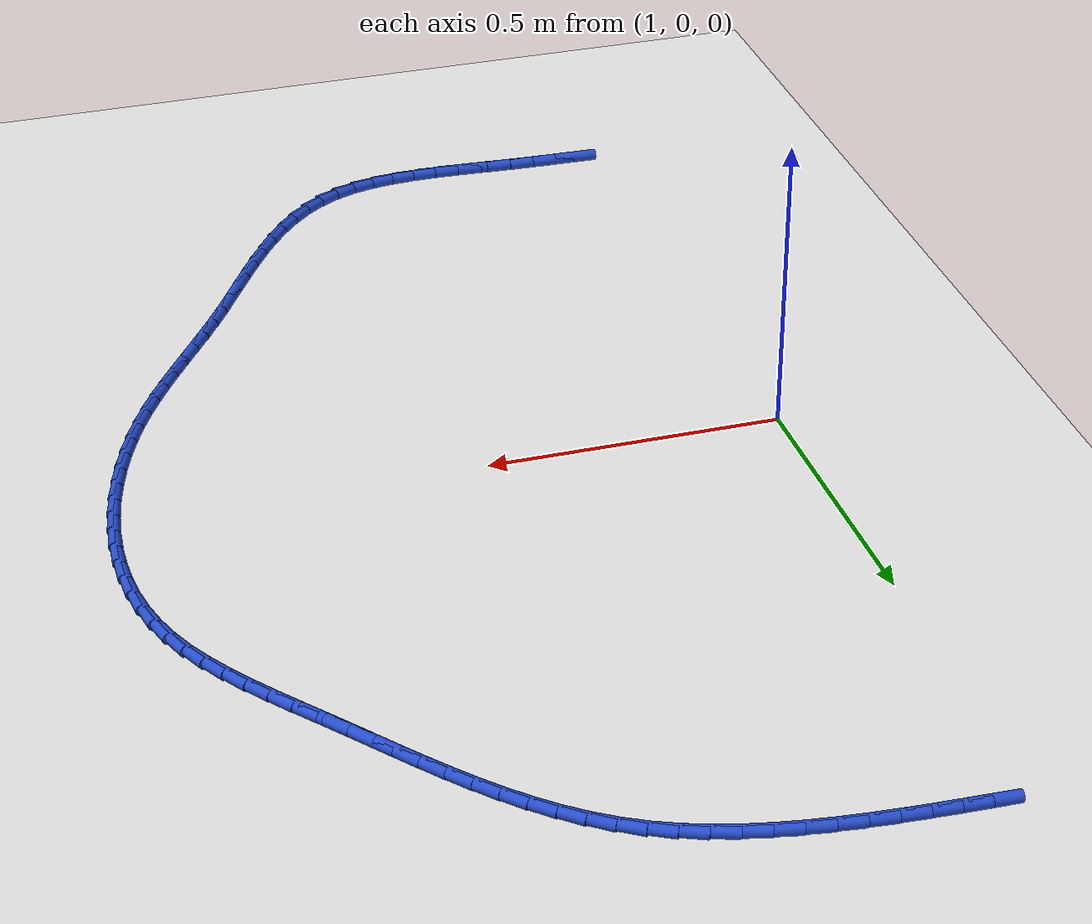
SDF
<sdf version="1.6">
 <world name="default">
  <model name="ground_plane">
   <static>1</static>
   <link name="link">
    <collision name="collision">
     <geometry><plane><normal>0 0 1</normal><size>100 100</size></plane></geometry>
     <surface><friction><ode><mu>100</mu><mu2>50</mu2></ode></friction></surface>
    </collision>
    <visual name="visual">
     <cast_shadows>0</cast_shadows>
     <geometry><plane><normal>0 0 1</normal><size>100 100</size></plane></geometry>
     <material>
      <script><uri>file://media/materials/scripts/gazebo.material</uri><name>Gazebo/WhiteGlow</name></script>
     </material>
    </visual>
   </link>
  </model>
  <model name="line">
   <link name="link_38">
    <pose>1.071652119519367 1.0308378368710045 0.01 0 1.57 -0.036284288018105695</pose>
    <collision name="collision">
     <geometry><cylinder><radius>0.01</radius><length>0.08</length></cylinder></geometry>
    </collision>
    <visual name="visual">
     <material>
      <script><name>Gazebo/Blue</name><uri>file://media/materials/scripts/gazebo.material</uri></script>
     </material>
     <geometry><cylinder><radius>0.01</radius><length>0.08</length></cylinder></geometry>
    </visual>
   </link>
   <link name="link_39">
    <pose>1.1160883028211177 1.0292247936517411 0.01 0 1.57 -0.04643816507529963</pose>
    <collision name="collision">
     <geometry><cylinder><radius>0.01</radius><length>0.08</length></cylinder></geometry>
    </collision>
    <visual name="visual">
     <material>
      <script><name>Gazebo/Blue</name><uri>file://media/materials/scripts/gazebo.material</uri></script>
     </material>
     <geometry><cylinder><radius>0.01</radius><length>0.08</length></cylinder></geometry>
    </visual>
   </link>
   <link name="link_40">
    <pose>1.160792513021975 1.0271473185836058 0.01 0 1.57 -0.057548799111874716</pose>
    <collision name="collision">
     <geometry><cylinder><radius>0.01</radius><length>0.08</length></cylinder></geometry>
    </collision>
    <visual name="visual">
     <material>
      <script><name>Gazebo/Blue</name><uri>file://media/materials/scripts/gazebo.material</uri></script>
     </material>
     <geometry><cylinder><radius>0.01</radius><length>0.08</length></cylinder></geometry>
    </visual>
   </link>
   <link name="link_41">
    <pose>1.2056303577323875 1.024564102081764 0.01 0 1.57 -0.07501468954205713</pose>
    <collision name="collision">
     <geometry><cylinder><radius>0.01</radius><length>0.08</length></cylinder></geometry>
    </collision>
    <visual name="visual">
     <material>
      <script><name>Gazebo/Blue</name><uri>file://media/materials/scripts/gazebo.material</uri></script>
     </material>
     <geometry><cylinder><radius>0.01</radius><length>0.08</length></cylinder></geometry>
    </visual>
   </link>
   <link name="link_42">
    <pose>1.2503970764528456 1.0211996273448591 0.01 0 1.57 -0.09918247661691425</pose>
    <collision name="collision">
     <geometry><cylinder><radius>0.01</radius><length>0.08</length></cylinder></geometry>
    </collision>
    <visual name="visual">
     <material>
      <script><name>Gazebo/Blue</name><uri>file://media/materials/scripts/gazebo.material</uri></script>
     </material>
     <geometry><cylinder><radius>0.01</radius><length>0.08</length></cylinder></geometry>
    </visual>
   </link>
   <link name="link_43">
    <pose>1.2948861618503702 1.016772563559976 0.01 0 1.57 -0.13039980829297934</pose>
    <collision name="collision">
     <geometry><cylinder><radius>0.01</radius><length>0.08</length></cylinder></geometry>
    </collision>
    <visual name="visual">
     <material>
      <script><name>Gazebo/Blue</name><uri>file://media/materials/scripts/gazebo.material</uri></script>
     </material>
     <geometry><cylinder><radius>0.01</radius><length>0.08</length></cylinder></geometry>
    </visual>
   </link>
   <link name="link_44">
    <pose>1.3388911065919833 1.0110015799141998 0.01 0 1.57 -0.16912613754877995</pose>
    <collision name="collision">
     <geometry><cylinder><radius>0.01</radius><length>0.08</length></cylinder></geometry>
    </collision>
    <visual name="visual">
     <material>
      <script><name>Gazebo/Blue</name><uri>file://media/materials/scripts/gazebo.material</uri></script>
     </material>
     <geometry><cylinder><radius>0.01</radius><length>0.08</length></cylinder></geometry>
    </visual>
   </link>
   <link name="link_45">
    <pose>1.3822054033447055 1.0036053455946148 0.01 0 1.57 -0.21589909365717055</pose>
    <collision name="collision">
     <geometry><cylinder><radius>0.01</radius><length>0.08</length></cylinder></geometry>
    </collision>
    <visual name="visual">
     <material>
      <script><name>Gazebo/Blue</name><uri>file://media/materials/scripts/gazebo.material</uri></script>
     </material>
     <geometry><cylinder><radius>0.01</radius><length>0.08</length></cylinder></geometry>
    </visual>
   </link>
   <link name="link_46">
    <pose>1.4246225447755565 0.9943025297883058 0.01 0 1.57 -0.2712785358437303</pose>
    <collision name="collision">
     <geometry><cylinder><radius>0.01</radius><length>0.08</length></cylinder></geometry>
    </collision>
    <visual name="visual">
     <material>
      <script><name>Gazebo/Blue</name><uri>file://media/materials/scripts/gazebo.material</uri></script>
     </material>
     <geometry><cylinder><radius>0.01</radius><length>0.08</length></cylinder></geometry>
    </visual>
   </link>
   <link name="link_47">
    <pose>1.4659360235515593 0.982811801682358 0.01 0 1.57 -0.33575729902039086</pose>
    <collision name="collision">
     <geometry><cylinder><radius>0.01</radius><length>0.08</length></cylinder></geometry>
    </collision>
    <visual name="visual">
     <material>
      <script><name>Gazebo/Blue</name><uri>file://media/materials/scripts/gazebo.material</uri></script>
     </material>
     <geometry><cylinder><radius>0.01</radius><length>0.08</length></cylinder></geometry>
    </visual>
   </link>
   <link name="link_48">
    <pose>1.5059393323397339 0.9688518304638558 0.01 0 1.57 -0.4096295952911585</pose>
    <collision name="collision">
     <geometry><cylinder><radius>0.01</radius><length>0.08</length></cylinder></geometry>
    </collision>
    <visual name="visual">
     <material>
      <script><name>Gazebo/Blue</name><uri>file://media/materials/scripts/gazebo.material</uri></script>
     </material>
     <geometry><cylinder><radius>0.01</radius><length>0.08</length></cylinder></geometry>
    </visual>
   </link>
   <link name="link_49">
    <pose>1.5444259638071016 0.9521412853198846 0.01 0 1.57 -0.4925403948413887</pose>
    <collision name="collision">
     <geometry><cylinder><radius>0.01</radius><length>0.08</length></cylinder></geometry>
    </collision>
    <visual name="visual">
     <material>
      <script><name>Gazebo/Blue</name><uri>file://media/materials/scripts/gazebo.material</uri></script>
     </material>
     <geometry><cylinder><radius>0.01</radius><length>0.08</length></cylinder></geometry>
    </visual>
   </link>
   <link name="link_50">
    <pose>1.5811957664802025 0.9324085601762867 0.01 0 1.57 -0.575983143911066</pose>
    <collision name="collision">
     <geometry><cylinder><radius>0.01</radius><length>0.08</length></cylinder></geometry>
    </collision>
    <visual name="visual">
     <material>
      <script><name>Gazebo/Blue</name><uri>file://media/materials/scripts/gazebo.material</uri></script>
     </material>
     <geometry><cylinder><radius>0.01</radius><length>0.08</length></cylinder></geometry>
    </visual>
   </link>
   <link name="link_51">
    <pose>1.6162282689702971 0.9096569672258691 0.01 0 1.57 -0.6502326067444143</pose>
    <collision name="collision">
     <geometry><cylinder><radius>0.01</radius><length>0.08</length></cylinder></geometry>
    </collision>
    <visual name="visual">
     <material>
      <script><name>Gazebo/Blue</name><uri>file://media/materials/scripts/gazebo.material</uri></script>
     </material>
     <geometry><cylinder><radius>0.01</radius><length>0.08</length></cylinder></geometry>
    </visual>
   </link>
   <link name="link_52">
    <pose>1.6497035297703901 0.884196638015675 0.01 0 1.57 -0.7143633719763558</pose>
    <collision name="collision">
     <geometry><cylinder><radius>0.01</radius><length>0.08</length></cylinder></geometry>
    </collision>
    <visual name="visual">
     <material>
      <script><name>Gazebo/Blue</name><uri>file://media/materials/scripts/gazebo.material</uri></script>
     </material>
     <geometry><cylinder><radius>0.01</radius><length>0.08</length></cylinder></geometry>
    </visual>
   </link>
   <link name="link_53">
    <pose>1.6818121489541316 0.8563538331650749 0.01 0 1.57 -0.7684093224931483</pose>
    <collision name="collision">
     <geometry><cylinder><radius>0.01</radius><length>0.08</length></cylinder></geometry>
    </collision>
    <visual name="visual">
     <material>
      <script><name>Gazebo/Blue</name><uri>file://media/materials/scripts/gazebo.material</uri></script>
     </material>
     <geometry><cylinder><radius>0.01</radius><length>0.08</length></cylinder></geometry>
    </visual>
   </link>
   <link name="link_54">
    <pose>1.7127447265951725 0.8264548132934387 0.01 0 1.57 -0.8127045335842418</pose>
    <collision name="collision">
     <geometry><cylinder><radius>0.01</radius><length>0.08</length></cylinder></geometry>
    </collision>
    <visual name="visual">
     <material>
      <script><name>Gazebo/Blue</name><uri>file://media/materials/scripts/gazebo.material</uri></script>
     </material>
     <geometry><cylinder><radius>0.01</radius><length>0.08</length></cylinder></geometry>
    </visual>
   </link>
   <link name="link_55">
    <pose>1.7426918627671621 0.7948258390201363 0.01 0 1.57 -0.8477178680415633</pose>
    <collision name="collision">
     <geometry><cylinder><radius>0.01</radius><length>0.08</length></cylinder></geometry>
    </collision>
    <visual name="visual">
     <material>
      <script><name>Gazebo/Blue</name><uri>file://media/materials/scripts/gazebo.material</uri></script>
     </material>
     <geometry><cylinder><radius>0.01</radius><length>0.08</length></cylinder></geometry>
    </visual>
   </link>
   <link name="link_56">
    <pose>1.7718441575437502 0.7617931709645375 0.01 0 1.57 -0.8739342403804962</pose>
    <collision name="collision">
     <geometry><cylinder><radius>0.01</radius><length>0.08</length></cylinder></geometry>
    </collision>
    <visual name="visual">
     <material>
      <script><name>Gazebo/Blue</name><uri>file://media/materials/scripts/gazebo.material</uri></script>
     </material>
     <geometry><cylinder><radius>0.01</radius><length>0.08</length></cylinder></geometry>
    </visual>
   </link>
   <link name="link_57">
    <pose>1.8003922109985881 0.7276830697460126 0.01 0 1.57 -0.8917779430810567</pose>
    <collision name="collision">
     <geometry><cylinder><radius>0.01</radius><length>0.08</length></cylinder></geometry>
    </collision>
    <visual name="visual">
     <material>
      <script><name>Gazebo/Blue</name><uri>file://media/materials/scripts/gazebo.material</uri></script>
     </material>
     <geometry><cylinder><radius>0.01</radius><length>0.08</length></cylinder></geometry>
    </visual>
   </link>
   <link name="link_58">
    <pose>1.8285266232053246 0.6928217959839309 0.01 0 1.57 -0.901567364842364</pose>
    <collision name="collision">
     <geometry><cylinder><radius>0.01</radius><length>0.08</length></cylinder></geometry>
    </collision>
    <visual name="visual">
     <material>
      <script><name>Gazebo/Blue</name><uri>file://media/materials/scripts/gazebo.material</uri></script>
     </material>
     <geometry><cylinder><radius>0.01</radius><length>0.08</length></cylinder></geometry>
    </visual>
   </link>
   <link name="link_59">
    <pose>1.8564379942376108 0.657535610297663 0.01 0 1.57 -0.9034907593197451</pose>
    <collision name="collision">
     <geometry><cylinder><radius>0.01</radius><length>0.08</length></cylinder></geometry>
    </collision>
    <visual name="visual">
     <material>
      <script><name>Gazebo/Blue</name><uri>file://media/materials/scripts/gazebo.material</uri></script>
     </material>
     <geometry><cylinder><radius>0.01</radius><length>0.08</length></cylinder></geometry>
    </visual>
   </link>
   <link name="link_60">
    <pose>1.8843169241690954 0.6221507733065785 0.01 0 1.57 -0.8978523942312365</pose>
    <collision name="collision">
     <geometry><cylinder><radius>0.01</radius><length>0.08</length></cylinder></geometry>
    </collision>
    <visual name="visual">
     <material>
      <script><name>Gazebo/Blue</name><uri>file://media/materials/scripts/gazebo.material</uri></script>
     </material>
     <geometry><cylinder><radius>0.01</radius><length>0.08</length></cylinder></geometry>
    </visual>
   </link>
   <link name="link_61">
    <pose>1.9123451348355691 0.5869861539180188 0.01 0 1.57 -0.8932476660833276</pose>
    <collision name="collision">
     <geometry><cylinder><radius>0.01</radius><length>0.08</length></cylinder></geometry>
    </collision>
    <visual name="visual">
     <material>
      <script><name>Gazebo/Blue</name><uri>file://media/materials/scripts/gazebo.material</uri></script>
     </material>
     <geometry><cylinder><radius>0.01</radius><length>0.08</length></cylinder></geometry>
    </visual>
   </link>
   <link name="link_62">
    <pose>1.9404055334865529 0.5521118384085393 0.01 0 1.57 -0.9002894460323223</pose>
    <collision name="collision">
     <geometry><cylinder><radius>0.01</radius><length>0.08</length></cylinder></geometry>
    </collision>
    <visual name="visual">
     <material>
      <script><name>Gazebo/Blue</name><uri>file://media/materials/scripts/gazebo.material</uri></script>
     </material>
     <geometry><cylinder><radius>0.01</radius><length>0.08</length></cylinder></geometry>
    </visual>
   </link>
   <link name="link_63">
    <pose>1.9680177139076493 0.5172954309018589 0.01 0 1.57 -0.9199368609467999</pose>
    <collision name="collision">
     <geometry><cylinder><radius>0.01</radius><length>0.08</length></cylinder></geometry>
    </collision>
    <visual name="visual">
     <material>
      <script><name>Gazebo/Blue</name><uri>file://media/materials/scripts/gazebo.material</uri></script>
     </material>
     <geometry><cylinder><radius>0.01</radius><length>0.08</length></cylinder></geometry>
    </visual>
   </link>
   <link name="link_64">
    <pose>1.9946793372104046 0.4822862751401676 0.01 0 1.57 -0.9526892360861768</pose>
    <collision name="collision">
     <geometry><cylinder><radius>0.01</radius><length>0.08</length></cylinder></geometry>
    </collision>
    <visual name="visual">
     <material>
      <script><name>Gazebo/Blue</name><uri>file://media/materials/scripts/gazebo.material</uri></script>
     </material>
     <geometry><cylinder><radius>0.01</radius><length>0.08</length></cylinder></geometry>
    </visual>
   </link>
   <link name="link_65">
    <pose>2.019888064506368 0.4468337148656561 0.01 0 1.57 -0.9991382915906856</pose>
    <collision name="collision">
     <geometry><cylinder><radius>0.01</radius><length>0.08</length></cylinder></geometry>
    </collision>
    <visual name="visual">
     <material>
      <script><name>Gazebo/Blue</name><uri>file://media/materials/scripts/gazebo.material</uri></script>
     </material>
     <geometry><cylinder><radius>0.01</radius><length>0.08</length></cylinder></geometry>
    </visual>
   </link>
   <link name="link_66">
    <pose>2.0431415569070865 0.4106870938205144 0.01 0 1.57 -1.0597997818237335</pose>
    <collision name="collision">
     <geometry><cylinder><radius>0.01</radius><length>0.08</length></cylinder></geometry>
    </collision>
    <visual name="visual">
     <material>
      <script><name>Gazebo/Blue</name><uri>file://media/materials/scripts/gazebo.material</uri></script>
     </material>
     <geometry><cylinder><radius>0.01</radius><length>0.08</length></cylinder></geometry>
    </visual>
   </link>
   <link name="link_67">
    <pose>2.063937475524108 0.3735957557469327 0.01 0 1.57 -1.1348369613963785</pose>
    <collision name="collision">
     <geometry><cylinder><radius>0.01</radius><length>0.08</length></cylinder></geometry>
    </collision>
    <visual name="visual">
     <material>
      <script><name>Gazebo/Blue</name><uri>file://media/materials/scripts/gazebo.material</uri></script>
     </material>
     <geometry><cylinder><radius>0.01</radius><length>0.08</length></cylinder></geometry>
    </visual>
   </link>
   <link name="link_68">
    <pose>2.08177348146898 0.3353090443871021 0.01 0 1.57 -1.2230090784741638</pose>
    <collision name="collision">
     <geometry><cylinder><radius>0.01</radius><length>0.08</length></cylinder></geometry>
    </collision>
    <visual name="visual">
     <material>
      <script><name>Gazebo/Blue</name><uri>file://media/materials/scripts/gazebo.material</uri></script>
     </material>
     <geometry><cylinder><radius>0.01</radius><length>0.08</length></cylinder></geometry>
    </visual>
   </link>
   <link name="link_69">
    <pose>2.096171289173053 0.2955934656160376 0.01 0 1.57 -1.3129834698212568</pose>
    <collision name="collision">
     <geometry><cylinder><radius>0.01</radius><length>0.08</length></cylinder></geometry>
    </collision>
    <visual name="visual">
     <material>
      <script><name>Gazebo/Blue</name><uri>file://media/materials/scripts/gazebo.material</uri></script>
     </material>
     <geometry><cylinder><radius>0.01</radius><length>0.08</length></cylinder></geometry>
    </visual>
   </link>
   <link name="link_70">
    <pose>2.1070138944297727 0.25447330089958536 0.01 0 1.57 -1.3964854335596224</pose>
    <collision name="collision">
     <geometry><cylinder><radius>0.01</radius><length>0.08</length></cylinder></geometry>
    </collision>
    <visual name="visual">
     <material>
      <script><name>Gazebo/Blue</name><uri>file://media/materials/scripts/gazebo.material</uri></script>
     </material>
     <geometry><cylinder><radius>0.01</radius><length>0.08</length></cylinder></geometry>
    </visual>
   </link>
   <link name="link_71">
    <pose>2.114463111742006 0.21217176988611572 0.01 0 1.57 -1.4734308564868273</pose>
    <collision name="collision">
     <geometry><cylinder><radius>0.01</radius><length>0.08</length></cylinder></geometry>
    </collision>
    <visual name="visual">
     <material>
      <script><name>Gazebo/Blue</name><uri>file://media/materials/scripts/gazebo.material</uri></script>
     </material>
     <geometry><cylinder><radius>0.01</radius><length>0.08</length></cylinder></geometry>
    </visual>
   </link>
   <link name="link_72">
    <pose>2.118687968556996 0.16891723868654537 0.01 0 1.57 -1.5442099150164257</pose>
    <collision name="collision">
     <geometry><cylinder><radius>0.01</radius><length>0.08</length></cylinder></geometry>
    </collision>
    <visual name="visual">
     <material>
      <script><name>Gazebo/Blue</name><uri>file://media/materials/scripts/gazebo.material</uri></script>
     </material>
     <geometry><cylinder><radius>0.01</radius><length>0.08</length></cylinder></geometry>
    </visual>
   </link>
   <link name="link_73">
    <pose>2.1198574923219864 0.12493807341178978 0.01 0 1.57 1.532214804391361</pose>
    <collision name="collision">
     <geometry><cylinder><radius>0.01</radius><length>0.08</length></cylinder></geometry>
    </collision>
    <visual name="visual">
     <material>
      <script><name>Gazebo/Blue</name><uri>file://media/materials/scripts/gazebo.material</uri></script>
     </material>
     <geometry><cylinder><radius>0.01</radius><length>0.08</length></cylinder></geometry>
    </visual>
   </link>
   <link name="link_74">
    <pose>2.1181407104842194 0.08046264017276486 0.01 0 1.57 1.4720189425014627</pose>
    <collision name="collision">
     <geometry><cylinder><radius>0.01</radius><length>0.08</length></cylinder></geometry>
    </collision>
    <visual name="visual">
     <material>
      <script><name>Gazebo/Blue</name><uri>file://media/materials/scripts/gazebo.material</uri></script>
     </material>
     <geometry><cylinder><radius>0.01</radius><length>0.08</length></cylinder></geometry>
    </visual>
   </link>
   <link name="link_75">
    <pose>2.1137066504909394 0.03571930508038645 0.01 0 1.57 1.4161268489571401</pose>
    <collision name="collision">
     <geometry><cylinder><radius>0.01</radius><length>0.08</length></cylinder></geometry>
    </collision>
    <visual name="visual">
     <material>
      <script><name>Gazebo/Blue</name><uri>file://media/materials/scripts/gazebo.material</uri></script>
     </material>
     <geometry><cylinder><radius>0.01</radius><length>0.08</length></cylinder></geometry>
    </visual>
   </link>
   <link name="link_76">
    <pose>2.1067243397893876 -0.009063565754429945 0.01 0 1.57 1.3638731733381728</pose>
    <collision name="collision">
     <geometry><cylinder><radius>0.01</radius><length>0.08</length></cylinder></geometry>
    </collision>
    <visual name="visual">
     <material>
      <script><name>Gazebo/Blue</name><uri>file://media/materials/scripts/gazebo.material</uri></script>
     </material>
     <geometry><cylinder><radius>0.01</radius><length>0.08</length></cylinder></geometry>
    </visual>
   </link>
   <link name="link_77">
    <pose>2.0973628058268092 -0.05365760622076811 0.01 0 1.57 1.314610967232729</pose>
    <collision name="collision">
     <geometry><cylinder><radius>0.01</radius><length>0.08</length></cylinder></geometry>
    </collision>
    <visual name="visual">
     <material>
      <script><name>Gazebo/Blue</name><uri>file://media/materials/scripts/gazebo.material</uri></script>
     </material>
     <geometry><cylinder><radius>0.01</radius><length>0.08</length></cylinder></geometry>
    </visual>
   </link>
   <link name="link_78">
    <pose>2.085791076050446 -0.09783445020771138 0.01 0 1.57 1.2677153164271022</pose>
    <collision name="collision">
     <geometry><cylinder><radius>0.01</radius><length>0.08</length></cylinder></geometry>
    </collision>
    <visual name="visual">
     <material>
      <script><name>Gazebo/Blue</name><uri>file://media/materials/scripts/gazebo.material</uri></script>
     </material>
     <geometry><cylinder><radius>0.01</radius><length>0.08</length></cylinder></geometry>
    </visual>
   </link>
   <link name="link_79">
    <pose>2.072178177907541 -0.1413657316043454 0.01 0 1.57 1.2225787816029465</pose>
    <collision name="collision">
     <geometry><cylinder><radius>0.01</radius><length>0.08</length></cylinder></geometry>
    </collision>
    <visual name="visual">
     <material>
      <script><name>Gazebo/Blue</name><uri>file://media/materials/scripts/gazebo.material</uri></script>
     </material>
     <geometry><cylinder><radius>0.01</radius><length>0.08</length></cylinder></geometry>
    </visual>
   </link>
   <link name="link_80">
    <pose>2.0566931388453384 -0.1840230842997529 0.01 0 1.57 1.1786009166649476</pose>
    <collision name="collision">
     <geometry><cylinder><radius>0.01</radius><length>0.08</length></cylinder></geometry>
    </collision>
    <visual name="visual">
     <material>
      <script><name>Gazebo/Blue</name><uri>file://media/materials/scripts/gazebo.material</uri></script>
     </material>
     <geometry><cylinder><radius>0.01</radius><length>0.08</length></cylinder></geometry>
    </visual>
   </link>
   <link name="link_81">
    <pose>2.03950498631108 -0.22557814218301941 0.01 0 1.57 1.1351729501808114</pose>
    <collision name="collision">
     <geometry><cylinder><radius>0.01</radius><length>0.08</length></cylinder></geometry>
    </collision>
    <visual name="visual">
     <material>
      <script><name>Gazebo/Blue</name><uri>file://media/materials/scripts/gazebo.material</uri></script>
     </material>
     <geometry><cylinder><radius>0.01</radius><length>0.08</length></cylinder></geometry>
    </visual>
   </link>
   <link name="link_82">
    <pose>2.0207827477520093 -0.26580253914322827 0.01 0 1.57 1.0924291866605833</pose>
    <collision name="collision">
     <geometry><cylinder><radius>0.01</radius><length>0.08</length></cylinder></geometry>
    </collision>
    <visual name="visual">
     <material>
      <script><name>Gazebo/Blue</name><uri>file://media/materials/scripts/gazebo.material</uri></script>
     </material>
     <geometry><cylinder><radius>0.01</radius><length>0.08</length></cylinder></geometry>
    </visual>
   </link>
   <link name="link_83">
    <pose>2.0006989660103307 -0.30453415268519335 0.01 0 1.57 1.0546154346014718</pose>
    <collision name="collision">
     <geometry><cylinder><radius>0.01</radius><length>0.08</length></cylinder></geometry>
    </collision>
    <visual name="visual">
     <material>
      <script><name>Gazebo/Blue</name><uri>file://media/materials/scripts/gazebo.material</uri></script>
     </material>
     <geometry><cylinder><radius>0.01</radius><length>0.08</length></cylinder></geometry>
    </visual>
   </link>
   <link name="link_84">
    <pose>1.979445996387797 -0.34198420355739945 0.01 0 1.57 1.0240243790362145</pose>
    <collision name="collision">
     <geometry><cylinder><radius>0.01</radius><length>0.08</length></cylinder></geometry>
    </collision>
    <visual name="visual">
     <material>
      <script><name>Gazebo/Blue</name><uri>file://media/materials/scripts/gazebo.material</uri></script>
     </material>
     <geometry><cylinder><radius>0.01</radius><length>0.08</length></cylinder></geometry>
    </visual>
   </link>
   <link name="link_85">
    <pose>1.9572231288773345 -0.37849458886826465 0.01 0 1.57 1.0012993577716245</pose>
    <collision name="collision">
     <geometry><cylinder><radius>0.01</radius><length>0.08</length></cylinder></geometry>
    </collision>
    <visual name="visual">
     <material>
      <script><name>Gazebo/Blue</name><uri>file://media/materials/scripts/gazebo.material</uri></script>
     </material>
     <geometry><cylinder><radius>0.01</radius><length>0.08</length></cylinder></geometry>
    </visual>
   </link>
   <link name="link_86">
    <pose>1.934229660837977 -0.4144073445321336 0.01 0 1.57 0.9868171025620118</pose>
    <collision name="collision">
     <geometry><cylinder><radius>0.01</radius><length>0.08</length></cylinder></geometry>
    </collision>
    <visual name="visual">
     <material>
      <script><name>Gazebo/Blue</name><uri>file://media/materials/scripts/gazebo.material</uri></script>
     </material>
     <geometry><cylinder><radius>0.01</radius><length>0.08</length></cylinder></geometry>
    </visual>
   </link>
   <link name="link_87">
    <pose>1.9106648896287577 -0.4500645064633486 0.01 0 1.57 0.9807104655387848</pose>
    <collision name="collision">
     <geometry><cylinder><radius>0.01</radius><length>0.08</length></cylinder></geometry>
    </collision>
    <visual name="visual">
     <material>
      <script><name>Gazebo/Blue</name><uri>file://media/materials/scripts/gazebo.material</uri></script>
     </material>
     <geometry><cylinder><radius>0.01</radius><length>0.08</length></cylinder></geometry>
    </visual>
   </link>
   <link name="link_88">
    <pose>1.8867281126087105 -0.485808110576252 0.01 0 1.57 0.9828939432396013</pose>
    <collision name="collision">
     <geometry><cylinder><radius>0.01</radius><length>0.08</length></cylinder></geometry>
    </collision>
    <visual name="visual">
     <material>
      <script><name>Gazebo/Blue</name><uri>file://media/materials/scripts/gazebo.material</uri></script>
     </material>
     <geometry><cylinder><radius>0.01</radius><length>0.08</length></cylinder></geometry>
    </visual>
   </link>
   <link name="link_89">
    <pose>1.8626186271368685 -0.5219801927851881 0.01 0 1.57 0.9930862453593712</pose>
    <collision name="collision">
     <geometry><cylinder><radius>0.01</radius><length>0.08</length></cylinder></geometry>
    </collision>
    <visual name="visual">
     <material>
      <script><name>Gazebo/Blue</name><uri>file://media/materials/scripts/gazebo.material</uri></script>
     </material>
     <geometry><cylinder><radius>0.01</radius><length>0.08</length></cylinder></geometry>
    </visual>
   </link>
   <link name="link_90">
    <pose>1.8385357305722663 -0.5589227890044997 0.01 0 1.57 1.0108231701068995</pose>
    <collision name="collision">
     <geometry><cylinder><radius>0.01</radius><length>0.08</length></cylinder></geometry>
    </collision>
    <visual name="visual">
     <material>
      <script><name>Gazebo/Blue</name><uri>file://media/materials/scripts/gazebo.material</uri></script>
     </material>
     <geometry><cylinder><radius>0.01</radius><length>0.08</length></cylinder></geometry>
    </visual>
   </link>
   <link name="link_91">
    <pose>1.8146786214184258 -0.5969777373562314 0.01 0 1.57 1.0311453501393704</pose>
    <collision name="collision">
     <geometry><cylinder><radius>0.01</radius><length>0.08</length></cylinder></geometry>
    </collision>
    <visual name="visual">
     <material>
      <script><name>Gazebo/Blue</name><uri>file://media/materials/scripts/gazebo.material</uri></script>
     </material>
     <geometry><cylinder><radius>0.01</radius><length>0.08</length></cylinder></geometry>
    </visual>
   </link>
   <link name="link_92">
    <pose>1.7911409286781397 -0.6362756501662561 0.01 0 1.57 1.0415466713832886</pose>
    <collision name="collision">
     <geometry><cylinder><radius>0.01</radius><length>0.08</length></cylinder></geometry>
    </collision>
    <visual name="visual">
     <material>
      <script><name>Gazebo/Blue</name><uri>file://media/materials/scripts/gazebo.material</uri></script>
     </material>
     <geometry><cylinder><radius>0.01</radius><length>0.08</length></cylinder></geometry>
    </visual>
   </link>
   <link name="link_93">
    <pose>1.7677101052078843 -0.6763345357429064 0.01 0 1.57 1.0403939181719157</pose>
    <collision name="collision">
     <geometry><cylinder><radius>0.01</radius><length>0.08</length></cylinder></geometry>
    </collision>
    <visual name="visual">
     <material>
      <script><name>Gazebo/Blue</name><uri>file://media/materials/scripts/gazebo.material</uri></script>
     </material>
     <geometry><cylinder><radius>0.01</radius><length>0.08</length></cylinder></geometry>
    </visual>
   </link>
   <link name="link_94">
    <pose>1.7441184133361682 -0.7165619759633011 0.01 0 1.57 1.0278286447347085</pose>
    <collision name="collision">
     <geometry><cylinder><radius>0.01</radius><length>0.08</length></cylinder></geometry>
    </collision>
    <visual name="visual">
     <material>
      <script><name>Gazebo/Blue</name><uri>file://media/materials/scripts/gazebo.material</uri></script>
     </material>
     <geometry><cylinder><radius>0.01</radius><length>0.08</length></cylinder></geometry>
    </visual>
   </link>
   <link name="link_95">
    <pose>1.7200981153915018 -0.7563655527045572 0.01 0 1.57 1.00344678746462</pose>
    <collision name="collision">
     <geometry><cylinder><radius>0.01</radius><length>0.08</length></cylinder></geometry>
    </collision>
    <visual name="visual">
     <material>
      <script><name>Gazebo/Blue</name><uri>file://media/materials/scripts/gazebo.material</uri></script>
     </material>
     <geometry><cylinder><radius>0.01</radius><length>0.08</length></cylinder></geometry>
    </visual>
   </link>
   <link name="link_96">
    <pose>1.6953814737023953 -0.7951528478437918 0.01 0 1.57 0.96631256309542</pose>
    <collision name="collision">
     <geometry><cylinder><radius>0.01</radius><length>0.08</length></cylinder></geometry>
    </collision>
    <visual name="visual">
     <material>
      <script><name>Gazebo/Blue</name><uri>file://media/materials/scripts/gazebo.material</uri></script>
     </material>
     <geometry><cylinder><radius>0.01</radius><length>0.08</length></cylinder></geometry>
    </visual>
   </link>
   <link name="link_97">
    <pose>1.6697007505973576 -0.8323314432581239 0.01 0 1.57 0.9149787485545416</pose>
    <collision name="collision">
     <geometry><cylinder><radius>0.01</radius><length>0.08</length></cylinder></geometry>
    </collision>
    <visual name="visual">
     <material>
      <script><name>Gazebo/Blue</name><uri>file://media/materials/scripts/gazebo.material</uri></script>
     </material>
     <geometry><cylinder><radius>0.01</radius><length>0.08</length></cylinder></geometry>
    </visual>
   </link>
   <link name="link_98">
    <pose>1.6427882084048984 -0.8673089208246697 0.01 0 1.57 0.847563653678191</pose>
    <collision name="collision">
     <geometry><cylinder><radius>0.01</radius><length>0.08</length></cylinder></geometry>
    </collision>
    <visual name="visual">
     <material>
      <script><name>Gazebo/Blue</name><uri>file://media/materials/scripts/gazebo.material</uri></script>
     </material>
     <geometry><cylinder><radius>0.01</radius><length>0.08</length></cylinder></geometry>
    </visual>
   </link>
   <link name="link_99">
    <pose>1.6143761094535274 -0.899492862420548 0.01 0 1.57 0.7619798067399375</pose>
    <collision name="collision">
     <geometry><cylinder><radius>0.01</radius><length>0.08</length></cylinder></geometry>
    </collision>
    <visual name="visual">
     <material>
      <script><name>Gazebo/Blue</name><uri>file://media/materials/scripts/gazebo.material</uri></script>
     </material>
     <geometry><cylinder><radius>0.01</radius><length>0.08</length></cylinder></geometry>
    </visual>
   </link>
   <link name="link_100">
    <pose>1.5841967160717552 -0.9282908499228762 0.01 0 1.57 0.6564613777768543</pose>
    <collision name="collision">
     <geometry><cylinder><radius>0.01</radius><length>0.08</length></cylinder></geometry>
    </collision>
    <visual name="visual">
     <material>
      <script><name>Gazebo/Blue</name><uri>file://media/materials/scripts/gazebo.material</uri></script>
     </material>
     <geometry><cylinder><radius>0.01</radius><length>0.08</length></cylinder></geometry>
    </visual>
   </link>
   <link name="link_101">
    <pose>1.5519822905880911 -0.9531104652087714 0.01 0 1.57 0.5305306664978784</pose>
    <collision name="collision">
     <geometry><cylinder><radius>0.01</radius><length>0.08</length></cylinder></geometry>
    </collision>
    <visual name="visual">
     <material>
      <script><name>Gazebo/Blue</name><uri>file://media/materials/scripts/gazebo.material</uri></script>
     </material>
     <geometry><cylinder><radius>0.01</radius><length>0.08</length></cylinder></geometry>
    </visual>
   </link>
   <link name="link_102">
    <pose>1.517465095331044 -0.973359290155352 0.01 0 1.57 0.38746006264278265</pose>
    <collision name="collision">
     <geometry><cylinder><radius>0.01</radius><length>0.08</length></cylinder></geometry>
    </collision>
    <visual name="visual">
     <material>
      <script><name>Gazebo/Blue</name><uri>file://media/materials/scripts/gazebo.material</uri></script>
     </material>
     <geometry><cylinder><radius>0.01</radius><length>0.08</length></cylinder></geometry>
    </visual>
   </link>
   <link name="link_103">
    <pose>1.4803975210049631 -0.9884861559609202 0.01 0 1.57 0.25200119110998254</pose>
    <collision name="collision">
     <geometry><cylinder><radius>0.01</radius><length>0.08</length></cylinder></geometry>
    </collision>
    <visual name="visual">
     <material>
      <script><name>Gazebo/Blue</name><uri>file://media/materials/scripts/gazebo.material</uri></script>
     </material>
     <geometry><cylinder><radius>0.01</radius><length>0.08</length></cylinder></geometry>
    </visual>
   </link>
   <link name="link_104">
    <pose>1.4408833714825042 -0.9986600490297385 0.01 0 1.57 0.14343597485609214</pose>
    <collision name="collision">
     <geometry><cylinder><radius>0.01</radius><length>0.08</length></cylinder></geometry>
    </collision>
    <visual name="visual">
     <material>
      <script><name>Gazebo/Blue</name><uri>file://media/materials/scripts/gazebo.material</uri></script>
     </material>
     <geometry><cylinder><radius>0.01</radius><length>0.08</length></cylinder></geometry>
    </visual>
   </link>
   <link name="link_105">
    <pose>1.3993252084668493 -1.004662203758983 0.01 0 1.57 0.06084478281762096</pose>
    <collision name="collision">
     <geometry><cylinder><radius>0.01</radius><length>0.08</length></cylinder></geometry>
    </collision>
    <visual name="visual">
     <material>
      <script><name>Gazebo/Blue</name><uri>file://media/materials/scripts/gazebo.material</uri></script>
     </material>
     <geometry><cylinder><radius>0.01</radius><length>0.08</length></cylinder></geometry>
    </visual>
   </link>
   <link name="link_106">
    <pose>1.3561351039022933 -1.0072933439966003 0.01 0 1.57 0.0013701776908282043</pose>
    <collision name="collision">
     <geometry><cylinder><radius>0.01</radius><length>0.08</length></cylinder></geometry>
    </collision>
    <visual name="visual">
     <material>
      <script><name>Gazebo/Blue</name><uri>file://media/materials/scripts/gazebo.material</uri></script>
     </material>
     <geometry><cylinder><radius>0.01</radius><length>0.08</length></cylinder></geometry>
    </visual>
   </link>
   <link name="link_107">
    <pose>1.3117251297331274 -1.0073541935905366 0.01 0 1.57 -0.03777064837469351</pose>
    <collision name="collision">
     <geometry><cylinder><radius>0.01</radius><length>0.08</length></cylinder></geometry>
    </collision>
    <visual name="visual">
     <material>
      <script><name>Gazebo/Blue</name><uri>file://media/materials/scripts/gazebo.material</uri></script>
     </material>
     <geometry><cylinder><radius>0.01</radius><length>0.08</length></cylinder></geometry>
    </visual>
   </link>
   <link name="link_108">
    <pose>1.2665073579036448 -1.005645476388738 0.01 0 1.57 -0.05863376366753703</pose>
    <collision name="collision">
     <geometry><cylinder><radius>0.01</radius><length>0.08</length></cylinder></geometry>
    </collision>
    <visual name="visual">
     <material>
      <script><name>Gazebo/Blue</name><uri>file://media/materials/scripts/gazebo.material</uri></script>
     </material>
     <geometry><cylinder><radius>0.01</radius><length>0.08</length></cylinder></geometry>
    </visual>
   </link>
   <link name="link_109">
    <pose>1.2208938603581392 -1.002967916239151 0.01 0 1.57 -0.06232830847070164</pose>
    <collision name="collision">
     <geometry><cylinder><radius>0.01</radius><length>0.08</length></cylinder></geometry>
    </collision>
    <visual name="visual">
     <material>
      <script><name>Gazebo/Blue</name><uri>file://media/materials/scripts/gazebo.material</uri></script>
     </material>
     <geometry><cylinder><radius>0.01</radius><length>0.08</length></cylinder></geometry>
    </visual>
   </link>
   <link name="link_110">
    <pose>1.175296709040901 -1.000122236989721 0.01 0 1.57 -0.04998818759087106</pose>
    <collision name="collision">
     <geometry><cylinder><radius>0.01</radius><length>0.08</length></cylinder></geometry>
    </collision>
    <visual name="visual">
     <material>
      <script><name>Gazebo/Blue</name><uri>file://media/materials/scripts/gazebo.material</uri></script>
     </material>
     <geometry><cylinder><radius>0.01</radius><length>0.08</length></cylinder></geometry>
    </visual>
   </link>
   <link name="link_111">
    <pose>1.130109309917381 -0.9978615174489196 0.01 0 1.57 -0.035043532811689634</pose>
    <collision name="collision">
     <geometry><cylinder><radius>0.01</radius><length>0.08</length></cylinder></geometry>
    </collision>
    <visual name="visual">
     <material>
      <script><name>Gazebo/Blue</name><uri>file://media/materials/scripts/gazebo.material</uri></script>
     </material>
     <geometry><cylinder><radius>0.01</radius><length>0.08</length></cylinder></geometry>
    </visual>
   </link>
   <link name="link_112">
    <pose>1.0854734902362855 -0.9962966800191189 0.01 0 1.57 -0.02760924385528276</pose>
    <collision name="collision">
     <geometry><cylinder><radius>0.01</radius><length>0.08</length></cylinder></geometry>
    </collision>
    <visual name="visual">
     <material>
      <script><name>Gazebo/Blue</name><uri>file://media/materials/scripts/gazebo.material</uri></script>
     </material>
     <geometry><cylinder><radius>0.01</radius><length>0.08</length></cylinder></geometry>
    </visual>
   </link>
   <link name="link_113">
    <pose>1.0413506764654308 -0.9950781728677804 0.01 0 1.57 -0.028210323435537633</pose>
    <collision name="collision">
     <geometry><cylinder><radius>0.01</radius><length>0.08</length></cylinder></geometry>
    </collision>
    <visual name="visual">
     <material>
      <script><name>Gazebo/Blue</name><uri>file://media/materials/scripts/gazebo.material</uri></script>
     </material>
     <geometry><cylinder><radius>0.01</radius><length>0.08</length></cylinder></geometry>
    </visual>
   </link>
  </model>
 </world>
</sdf>
